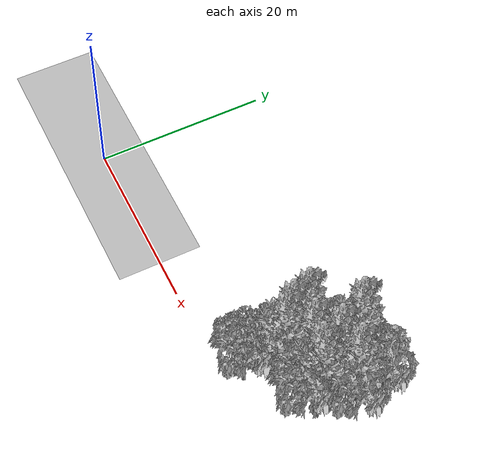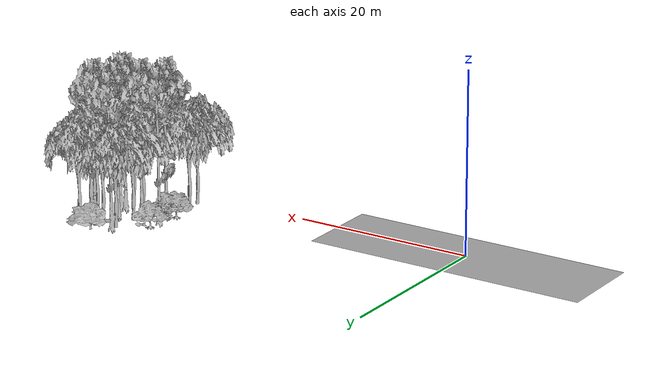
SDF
<sdf version="1.7">
 <world name="default">
  <model name="ground_plane">
   <static>1</static>
   <link name="link">
    <collision name="collision">
     <pose>-50 0 0 0 -0 0</pose>
     <geometry><plane><normal>0 0 1</normal><size>100 100</size></plane></geometry>
     <surface><contact><ode><min_depth>0.01</min_depth><max_vel>0</max_vel></ode></contact></surface>
    </collision>
    <visual name="grass">
     <cast_shadows>0</cast_shadows>
     <geometry>
      <mesh>
       <scale>0.5814285714285714 0.18142857142857144 0.1</scale>
       <uri>file://grass_plane/meshes/grass_plane.dae</uri>
      </mesh>
     </geometry>
    </visual>
   </link>
  </model>
  <model name="Tree 8">
   <static>1</static>
   <pose>38.22960909885768 6.948712087301086 0 1.57079 -0 0</pose>
   <link name="link">
    <collision name="collision">
     <geometry><mesh><scale>3.5 5 3.5</scale><uri>model://tree_9/meshes/tree_9.obj</uri></mesh></geometry>
    </collision>
    <visual name="visual">
     <geometry><mesh><scale>3.5 5 3.5</scale><uri>model://tree_9/meshes/tree_9.obj</uri></mesh></geometry>
    </visual>
   </link>
  </model>
  <model name="Tree 23">
   <static>1</static>
   <pose>40.609137790138675 9.81755615080386 0 1.57079 -0 0</pose>
   <link name="link">
    <collision name="collision">
     <geometry><mesh><scale>3.5 5 3.5</scale><uri>model://tree_2/meshes/tree_2.obj</uri></mesh></geometry>
    </collision>
    <visual name="visual">
     <geometry><mesh><scale>3.5 5 3.5</scale><uri>model://tree_2/meshes/tree_2.obj</uri></mesh></geometry>
    </visual>
   </link>
  </model>
  <model name="Tree 24">
   <static>1</static>
   <pose>33.88363590075572 5.533667802592195 0 1.57079 -0 0</pose>
   <link name="link">
    <collision name="collision">
     <geometry><mesh><scale>3.5 5 3.5</scale><uri>model://tree_9/meshes/tree_9.obj</uri></mesh></geometry>
    </collision>
    <visual name="visual">
     <geometry><mesh><scale>3.5 5 3.5</scale><uri>model://tree_9/meshes/tree_9.obj</uri></mesh></geometry>
    </visual>
   </link>
  </model>
  <model name="Tree 37">
   <static>1</static>
   <pose>35.080775946389025 12.711064248459962 0 1.57079 -0 0</pose>
   <link name="link">
    <collision name="collision">
     <geometry><mesh><scale>3.5 5 3.5</scale><uri>model://tree_2/meshes/tree_2.obj</uri></mesh></geometry>
    </collision>
    <visual name="visual">
     <geometry><mesh><scale>3.5 5 3.5</scale><uri>model://tree_2/meshes/tree_2.obj</uri></mesh></geometry>
    </visual>
   </link>
  </model>
  <model name="Tree 40">
   <static>1</static>
   <pose>32.132633428056366 3.579273148512378 0 1.57079 -0 0</pose>
   <link name="link">
    <collision name="collision">
     <geometry><mesh><scale>3.5 5 3.5</scale><uri>model://tree_2/meshes/tree_2.obj</uri></mesh></geometry>
    </collision>
    <visual name="visual">
     <geometry><mesh><scale>3.5 5 3.5</scale><uri>model://tree_2/meshes/tree_2.obj</uri></mesh></geometry>
    </visual>
   </link>
  </model>
  <model name="Tree 55">
   <static>1</static>
   <pose>35.723000797026785 7.433198656415108 0 1.57079 -0 0</pose>
   <link name="link">
    <collision name="collision">
     <geometry><mesh><scale>3.5 5 3.5</scale><uri>model://tree_9/meshes/tree_9.obj</uri></mesh></geometry>
    </collision>
    <visual name="visual">
     <geometry><mesh><scale>3.5 5 3.5</scale><uri>model://tree_9/meshes/tree_9.obj</uri></mesh></geometry>
    </visual>
   </link>
  </model>
  <model name="Tree 88">
   <static>1</static>
   <pose>32.12325058504739 10.815652681895017 0 1.57079 -0 0</pose>
   <link name="link">
    <collision name="collision">
     <geometry><mesh><scale>4 2.5 4</scale><uri>model://tree_1/meshes/tree_1.obj</uri></mesh></geometry>
    </collision>
    <visual name="visual">
     <geometry><mesh><scale>4 2.5 4</scale><uri>model://tree_1/meshes/tree_1.obj</uri></mesh></geometry>
    </visual>
   </link>
  </model>
  <model name="Tree 91">
   <static>1</static>
   <pose>39.415550364424774 13.328485693805135 0 1.57079 -0 0</pose>
   <link name="link">
    <collision name="collision">
     <geometry><mesh><scale>3.5 5 3.5</scale><uri>model://tree_2/meshes/tree_2.obj</uri></mesh></geometry>
    </collision>
    <visual name="visual">
     <geometry><mesh><scale>3.5 5 3.5</scale><uri>model://tree_2/meshes/tree_2.obj</uri></mesh></geometry>
    </visual>
   </link>
  </model>
  <model name="Tree 111">
   <static>1</static>
   <pose>31.576386692842803 6.893865699649709 0 1.57079 -0 0</pose>
   <link name="link">
    <collision name="collision">
     <geometry><mesh><scale>4 2.5 4</scale><uri>model://tree_1/meshes/tree_1.obj</uri></mesh></geometry>
    </collision>
    <visual name="visual">
     <geometry><mesh><scale>4 2.5 4</scale><uri>model://tree_1/meshes/tree_1.obj</uri></mesh></geometry>
    </visual>
   </link>
  </model>
  <model name="Tree 122">
   <static>1</static>
   <pose>32.17963732967347 2.0169375874081474 0 1.57079 -0 0</pose>
   <link name="link">
    <collision name="collision">
     <geometry><mesh><scale>3.5 5 3.5</scale><uri>model://tree_2/meshes/tree_2.obj</uri></mesh></geometry>
    </collision>
    <visual name="visual">
     <geometry><mesh><scale>3.5 5 3.5</scale><uri>model://tree_2/meshes/tree_2.obj</uri></mesh></geometry>
    </visual>
   </link>
  </model>
  <model name="Tree 142">
   <static>1</static>
   <pose>36.14236676002082 6.421450053391421 0 1.57079 -0 0</pose>
   <link name="link">
    <collision name="collision">
     <geometry><mesh><scale>3.5 5 3.5</scale><uri>model://tree_2/meshes/tree_2.obj</uri></mesh></geometry>
    </collision>
    <visual name="visual">
     <geometry><mesh><scale>3.5 5 3.5</scale><uri>model://tree_2/meshes/tree_2.obj</uri></mesh></geometry>
    </visual>
   </link>
  </model>
  <model name="Tree 163">
   <static>1</static>
   <pose>38.98855258361634 10.749243515239336 0 1.57079 -0 0</pose>
   <link name="link">
    <collision name="collision">
     <geometry><mesh><scale>3.5 5 3.5</scale><uri>model://tree_2/meshes/tree_2.obj</uri></mesh></geometry>
    </collision>
    <visual name="visual">
     <geometry><mesh><scale>3.5 5 3.5</scale><uri>model://tree_2/meshes/tree_2.obj</uri></mesh></geometry>
    </visual>
   </link>
  </model>
  <model name="Tree 199">
   <static>1</static>
   <pose>37.37851438115628 9.433549854302765 0 1.57079 -0 0</pose>
   <link name="link">
    <collision name="collision">
     <geometry><mesh><scale>3.5 5 3.5</scale><uri>model://tree_9/meshes/tree_9.obj</uri></mesh></geometry>
    </collision>
    <visual name="visual">
     <geometry><mesh><scale>3.5 5 3.5</scale><uri>model://tree_9/meshes/tree_9.obj</uri></mesh></geometry>
    </visual>
   </link>
  </model>
  <model name="Tree 227">
   <static>1</static>
   <pose>38.895810539669796 7.0064544398344175 0 1.57079 -0 0</pose>
   <link name="link">
    <collision name="collision">
     <geometry><mesh><scale>3.5 5 3.5</scale><uri>model://tree_9/meshes/tree_9.obj</uri></mesh></geometry>
    </collision>
    <visual name="visual">
     <geometry><mesh><scale>3.5 5 3.5</scale><uri>model://tree_9/meshes/tree_9.obj</uri></mesh></geometry>
    </visual>
   </link>
  </model>
  <model name="Tree 231">
   <static>1</static>
   <pose>34.94976860483847 9.828845615881203 0 1.57079 -0 0</pose>
   <link name="link">
    <collision name="collision">
     <geometry><mesh><scale>3.5 5 3.5</scale><uri>model://tree_2/meshes/tree_2.obj</uri></mesh></geometry>
    </collision>
    <visual name="visual">
     <geometry><mesh><scale>3.5 5 3.5</scale><uri>model://tree_2/meshes/tree_2.obj</uri></mesh></geometry>
    </visual>
   </link>
  </model>
  <model name="Tree 274">
   <static>1</static>
   <pose>37.27217997490372 14.398187444120257 0 1.57079 -0 0</pose>
   <link name="link">
    <collision name="collision">
     <geometry><mesh><scale>3 2 3</scale><uri>model://tree_3/meshes/tree_3.obj</uri></mesh></geometry>
    </collision>
    <visual name="visual">
     <geometry><mesh><scale>3 2 3</scale><uri>model://tree_3/meshes/tree_3.obj</uri></mesh></geometry>
    </visual>
   </link>
  </model>
  <model name="Tree 317">
   <static>1</static>
   <pose>32.32327167926357 7.489518376836774 0 1.57079 -0 0</pose>
   <link name="link">
    <collision name="collision">
     <geometry><mesh><scale>4 2.5 4</scale><uri>model://tree_1/meshes/tree_1.obj</uri></mesh></geometry>
    </collision>
    <visual name="visual">
     <geometry><mesh><scale>4 2.5 4</scale><uri>model://tree_1/meshes/tree_1.obj</uri></mesh></geometry>
    </visual>
   </link>
  </model>
  <model name="Tree 335">
   <static>1</static>
   <pose>39.890444598441164 10.141074334371236 0 1.57079 -0 0</pose>
   <link name="link">
    <collision name="collision">
     <geometry><mesh><scale>3.5 5 3.5</scale><uri>model://tree_9/meshes/tree_9.obj</uri></mesh></geometry>
    </collision>
    <visual name="visual">
     <geometry><mesh><scale>3.5 5 3.5</scale><uri>model://tree_9/meshes/tree_9.obj</uri></mesh></geometry>
    </visual>
   </link>
  </model>
  <model name="Tree 347">
   <static>1</static>
   <pose>38.212925125830694 5.3431317249526735 0 1.57079 -0 0</pose>
   <link name="link">
    <collision name="collision">
     <geometry><mesh><scale>3.5 5 3.5</scale><uri>model://tree_2/meshes/tree_2.obj</uri></mesh></geometry>
    </collision>
    <visual name="visual">
     <geometry><mesh><scale>3.5 5 3.5</scale><uri>model://tree_2/meshes/tree_2.obj</uri></mesh></geometry>
    </visual>
   </link>
  </model>
  <model name="Tree 349">
   <static>1</static>
   <pose>35.76075191108333 12.707002175939785 0 1.57079 -0 0</pose>
   <link name="link">
    <collision name="collision">
     <geometry><mesh><scale>3.5 5 3.5</scale><uri>model://tree_9/meshes/tree_9.obj</uri></mesh></geometry>
    </collision>
    <visual name="visual">
     <geometry><mesh><scale>3.5 5 3.5</scale><uri>model://tree_9/meshes/tree_9.obj</uri></mesh></geometry>
    </visual>
   </link>
  </model>
  <model name="Tree 367">
   <static>1</static>
   <pose>33.10018796025496 6.5503132895950245 0 1.57079 -0 0</pose>
   <link name="link">
    <collision name="collision">
     <geometry><mesh><scale>3.5 5 3.5</scale><uri>model://tree_9/meshes/tree_9.obj</uri></mesh></geometry>
    </collision>
    <visual name="visual">
     <geometry><mesh><scale>3.5 5 3.5</scale><uri>model://tree_9/meshes/tree_9.obj</uri></mesh></geometry>
    </visual>
   </link>
  </model>
  <model name="Tree 519">
   <static>1</static>
   <pose>32.6267772933018 8.491013691355601 0 1.57079 -0 0</pose>
   <link name="link">
    <collision name="collision">
     <geometry><mesh><scale>3.5 5 3.5</scale><uri>model://tree_9/meshes/tree_9.obj</uri></mesh></geometry>
    </collision>
    <visual name="visual">
     <geometry><mesh><scale>3.5 5 3.5</scale><uri>model://tree_9/meshes/tree_9.obj</uri></mesh></geometry>
    </visual>
   </link>
  </model>
  <model name="Tree 527">
   <static>1</static>
   <pose>37.77720310116284 11.367936426215032 0 1.57079 -0 0</pose>
   <link name="link">
    <collision name="collision">
     <geometry><mesh><scale>3.5 5 3.5</scale><uri>model://tree_2/meshes/tree_2.obj</uri></mesh></geometry>
    </collision>
    <visual name="visual">
     <geometry><mesh><scale>3.5 5 3.5</scale><uri>model://tree_2/meshes/tree_2.obj</uri></mesh></geometry>
    </visual>
   </link>
  </model>
 </world>
</sdf>
